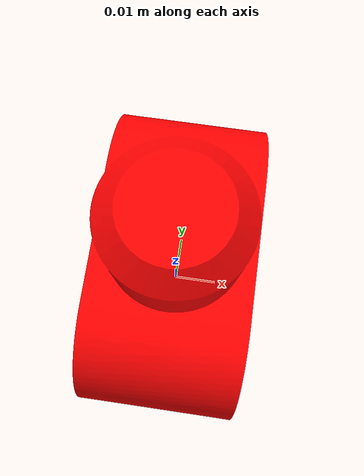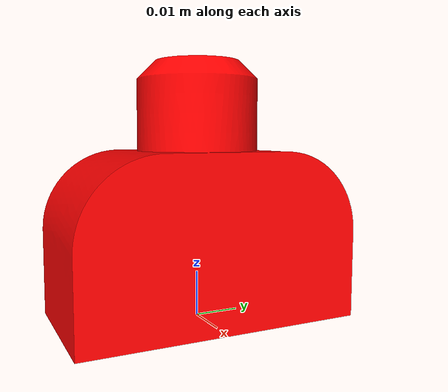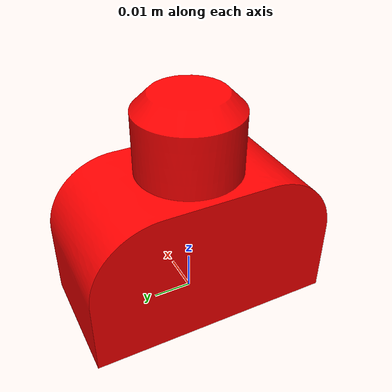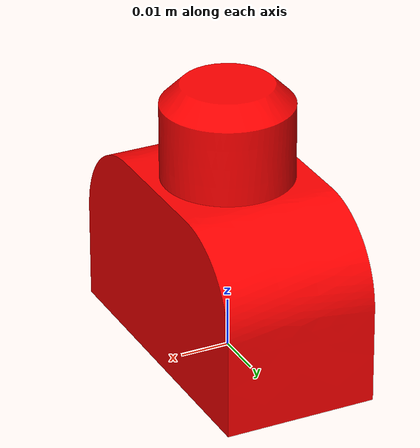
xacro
<?xml version="1.0"?>

<robot xmlns:xacro="http://www.ros.org/wiki/xacro" name="$(arg block_name)">
  <xacro:arg name="block_name" default="block"/>

  <link name="block">
    <visual>
      <geometry>
        <mesh filename="$(find ur5lego)/blocks_description/meshes/X1-Y2-Z2-TWINFILLET.dae"/>
      </geometry>
      <material name="Red">
        <color rgba="1.0 0.0 0.0 1.0"/>
      </material>
    </visual>
    <collision>
      <geometry>
        <mesh filename="$(find ur5lego)/blocks_description/meshes/X1-Y2-Z2-TWINFILLET.dae"/>
      </geometry>
    </collision>
    <inertial>
      <mass value="0.1"/>
      <origin rpy="0 0 0" xyz="0.0 0.0 0.0"/>
      <inertia ixx="0.0" ixy="0.0" ixz="0.0" iyy="0.0" iyz="0.0" izz="0.0"/>
    </inertial>
  </link>
</robot>
